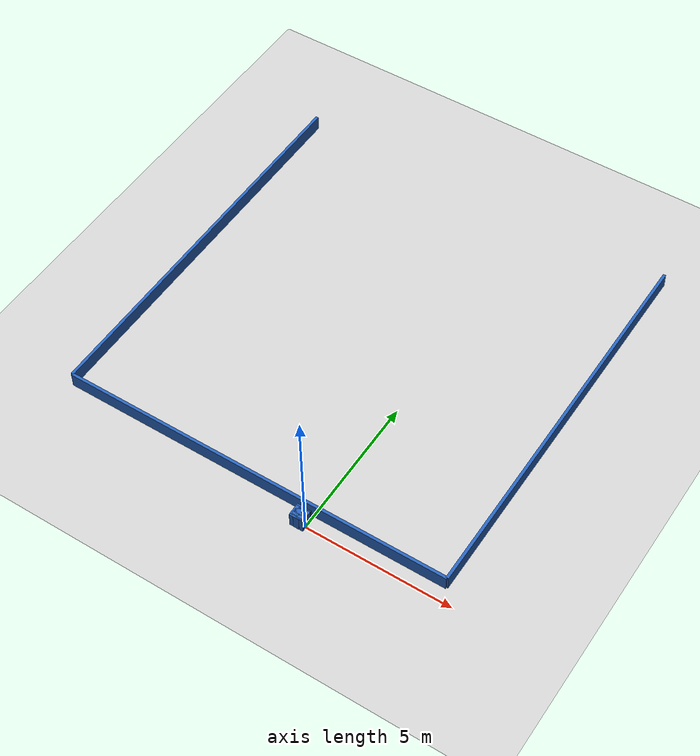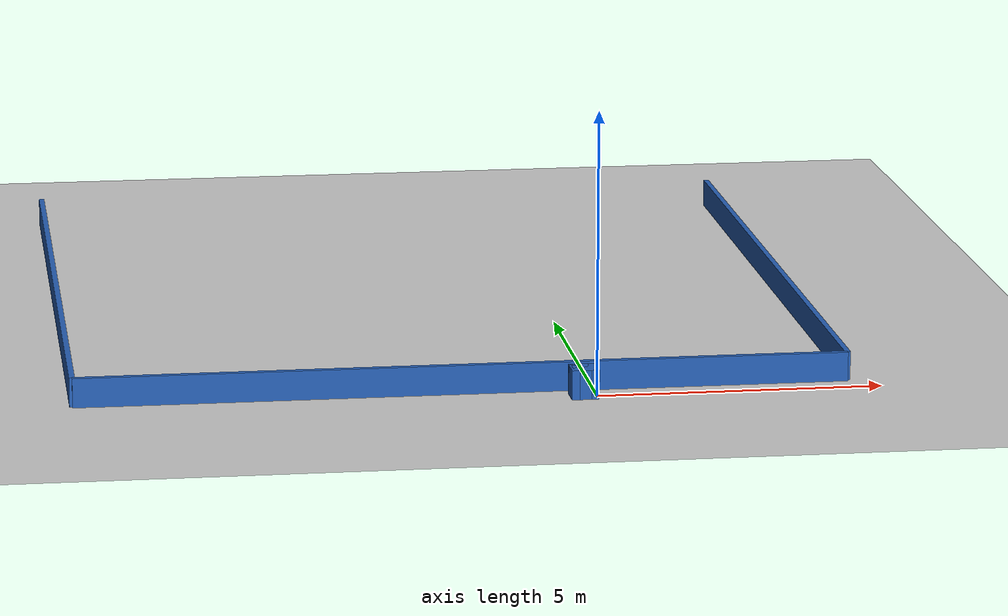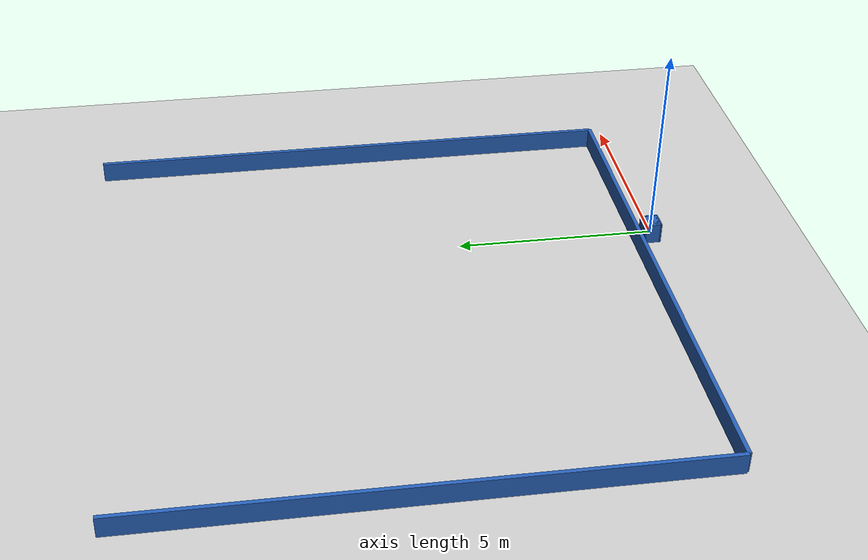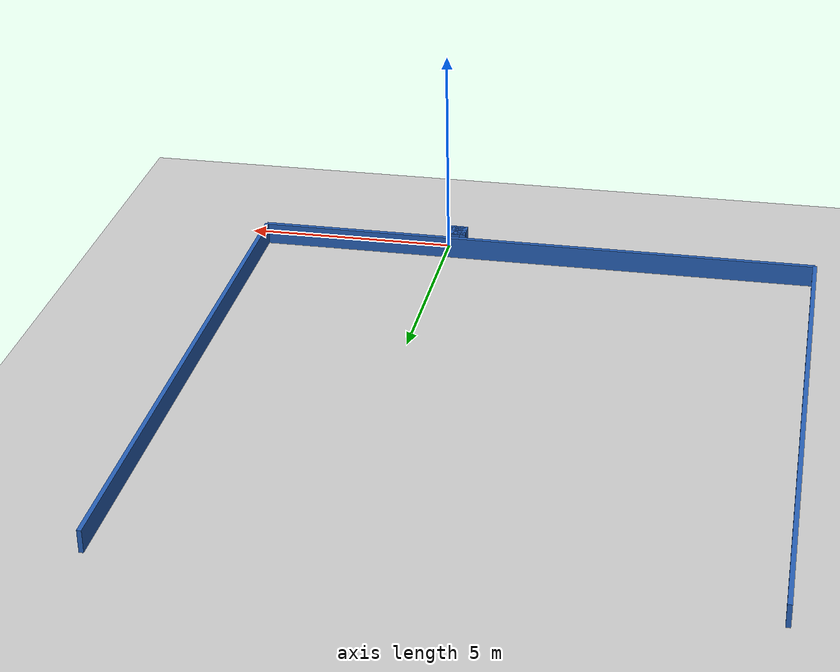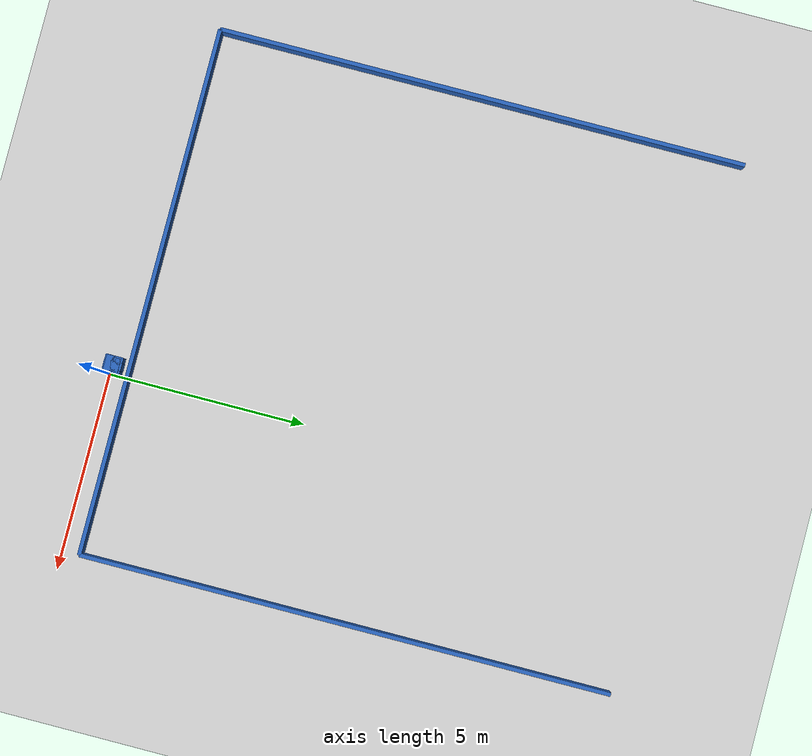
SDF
<?xml version="1.0" ?>
    <sdf version="1.5">
      <world name="default">
        <!-- A global light source -->
        <include>
          <uri>model://sun</uri>
        </include>
        <!-- A ground plane -->
        <include>
          <uri>model://ground_plane</uri>
        </include>

    <model name='libopen_space_final_T2B_106_71'>
      <static>1</static>
      <pose frame=''>-0.225000 0.075000 0.000000 0.000000 0.000000 0.000000</pose>
      <link name='link'>
        <inertial>
          <mass>1</mass>
          <inertia>
            <ixx>0.145833</ixx>
            <ixy>0</ixy>
            <ixz>0</ixz>
            <iyy>0.145833</iyy>
            <iyz>0</iyz>
            <izz>0.125</izz>
          </inertia>
        </inertial>
        <collision name='collision'>
          <geometry>
            <box>
              <size>0.47 0.45 1</size>
            </box>
          </geometry>
          <max_contacts>10</max_contacts>
          <surface>
            <contact>
              <ode/>
            </contact>
            <bounce/>
            <friction>
              <torsional>
                <ode/>
              </torsional>
              <ode/>
            </friction>
          </surface>
        </collision>
        <visual name='visual'>
          <geometry>
            <box>
              <size>0.47 0.45 1</size>
            </box>
          </geometry>
	    <material>
              <ambient>0.152000 0.379000 0.720000 1</ambient>
	      <diffuse>0.152000 0.379000 0.720000 1</diffuse>
          </material>
          <material>
            <script>
              <name>Gazebo/Grey</name>
              <uri>file://media/materials/scripts/gazebo.material</uri>
            </script>
          </material>
        </visual>
        <self_collide>0</self_collide>
        <kinematic>0</kinematic>
        <gravity>1</gravity>
      </link>
      <plugin name='libopen_space_final_T2B_106_71' filename='libopen_space_final_T2B_106_71.so'/>
    </model>

    <model name='libopen_space_final_T2B_94_31'>
      <static>1</static>
      <pose frame=''>-0.225000 0.075000 0.000000 0.000000 0.000000 0.000000</pose>
      <link name='link'>
        <inertial>
          <mass>1</mass>
          <inertia>
            <ixx>0.145833</ixx>
            <ixy>0</ixy>
            <ixz>0</ixz>
            <iyy>0.145833</iyy>
            <iyz>0</iyz>
            <izz>0.125</izz>
          </inertia>
        </inertial>
        <collision name='collision'>
          <geometry>
            <box>
              <size>0.43 0.33 1</size>
            </box>
          </geometry>
          <max_contacts>10</max_contacts>
          <surface>
            <contact>
              <ode/>
            </contact>
            <bounce/>
            <friction>
              <torsional>
                <ode/>
              </torsional>
              <ode/>
            </friction>
          </surface>
        </collision>
        <visual name='visual'>
          <geometry>
            <box>
              <size>0.43 0.33 1</size>
            </box>
          </geometry>
	    <material>
              <ambient>0.152000 0.379000 0.720000 1</ambient>
	      <diffuse>0.152000 0.379000 0.720000 1</diffuse>
          </material>
          <material>
            <script>
              <name>Gazebo/Grey</name>
              <uri>file://media/materials/scripts/gazebo.material</uri>
            </script>
          </material>
        </visual>
        <self_collide>0</self_collide>
        <kinematic>0</kinematic>
        <gravity>1</gravity>
      </link>
      <plugin name='libopen_space_final_T2B_94_31' filename='libopen_space_final_T2B_94_31.so'/>
    </model>

    <model name='libopen_space_final_T2B_105_38'>
      <static>1</static>
      <pose frame=''>-0.225000 0.075000 0.000000 0.000000 0.000000 0.000000</pose>
      <link name='link'>
        <inertial>
          <mass>1</mass>
          <inertia>
            <ixx>0.145833</ixx>
            <ixy>0</ixy>
            <ixz>0</ixz>
            <iyy>0.145833</iyy>
            <iyz>0</iyz>
            <izz>0.125</izz>
          </inertia>
        </inertial>
        <collision name='collision'>
          <geometry>
            <box>
              <size>0.47 0.40 1</size>
            </box>
          </geometry>
          <max_contacts>10</max_contacts>
          <surface>
            <contact>
              <ode/>
            </contact>
            <bounce/>
            <friction>
              <torsional>
                <ode/>
              </torsional>
              <ode/>
            </friction>
          </surface>
        </collision>
        <visual name='visual'>
          <geometry>
            <box>
              <size>0.47 0.40 1</size>
            </box>
          </geometry>
	    <material>
              <ambient>0.152000 0.379000 0.720000 1</ambient>
	      <diffuse>0.152000 0.379000 0.720000 1</diffuse>
          </material>
          <material>
            <script>
              <name>Gazebo/Grey</name>
              <uri>file://media/materials/scripts/gazebo.material</uri>
            </script>
          </material>
        </visual>
        <self_collide>0</self_collide>
        <kinematic>0</kinematic>
        <gravity>1</gravity>
      </link>
      <plugin name='libopen_space_final_T2B_105_38' filename='libopen_space_final_T2B_105_38.so'/>
    </model>

    <model name='libopen_space_final_T2B_51_63'>
      <static>1</static>
      <pose frame=''>-0.225000 0.075000 0.000000 0.000000 0.000000 0.000000</pose>
      <link name='link'>
        <inertial>
          <mass>1</mass>
          <inertia>
            <ixx>0.145833</ixx>
            <ixy>0</ixy>
            <ixz>0</ixz>
            <iyy>0.145833</iyy>
            <iyz>0</iyz>
            <izz>0.125</izz>
          </inertia>
        </inertial>
        <collision name='collision'>
          <geometry>
            <box>
              <size>0.26 0.32 1</size>
            </box>
          </geometry>
          <max_contacts>10</max_contacts>
          <surface>
            <contact>
              <ode/>
            </contact>
            <bounce/>
            <friction>
              <torsional>
                <ode/>
              </torsional>
              <ode/>
            </friction>
          </surface>
        </collision>
        <visual name='visual'>
          <geometry>
            <box>
              <size>0.26 0.32 1</size>
            </box>
          </geometry>
	    <material>
              <ambient>0.152000 0.379000 0.720000 1</ambient>
	      <diffuse>0.152000 0.379000 0.720000 1</diffuse>
          </material>
          <material>
            <script>
              <name>Gazebo/Grey</name>
              <uri>file://media/materials/scripts/gazebo.material</uri>
            </script>
          </material>
        </visual>
        <self_collide>0</self_collide>
        <kinematic>0</kinematic>
        <gravity>1</gravity>
      </link>
      <plugin name='libopen_space_final_T2B_51_63' filename='libopen_space_final_T2B_51_63.so'/>
    </model>

    <model name='libopen_space_final_T2B_113_82'>
      <static>1</static>
      <pose frame=''>-0.225000 0.075000 0.000000 0.000000 0.000000 0.000000</pose>
      <link name='link'>
        <inertial>
          <mass>1</mass>
          <inertia>
            <ixx>0.145833</ixx>
            <ixy>0</ixy>
            <ixz>0</ixz>
            <iyy>0.145833</iyy>
            <iyz>0</iyz>
            <izz>0.125</izz>
          </inertia>
        </inertial>
        <collision name='collision'>
          <geometry>
            <box>
              <size>0.20 0.46 1</size>
            </box>
          </geometry>
          <max_contacts>10</max_contacts>
          <surface>
            <contact>
              <ode/>
            </contact>
            <bounce/>
            <friction>
              <torsional>
                <ode/>
              </torsional>
              <ode/>
            </friction>
          </surface>
        </collision>
        <visual name='visual'>
          <geometry>
            <box>
              <size>0.20 0.46 1</size>
            </box>
          </geometry>
	    <material>
              <ambient>0.152000 0.379000 0.720000 1</ambient>
	      <diffuse>0.152000 0.379000 0.720000 1</diffuse>
          </material>
          <material>
            <script>
              <name>Gazebo/Grey</name>
              <uri>file://media/materials/scripts/gazebo.material</uri>
            </script>
          </material>
        </visual>
        <self_collide>0</self_collide>
        <kinematic>0</kinematic>
        <gravity>1</gravity>
      </link>
      <plugin name='libopen_space_final_T2B_113_82' filename='libopen_space_final_T2B_113_82.so'/>
    </model>

    <model name='libopen_space_final_T2B_105_94'>
      <static>1</static>
      <pose frame=''>-0.225000 0.075000 0.000000 0.000000 0.000000 0.000000</pose>
      <link name='link'>
        <inertial>
          <mass>1</mass>
          <inertia>
            <ixx>0.145833</ixx>
            <ixy>0</ixy>
            <ixz>0</ixz>
            <iyy>0.145833</iyy>
            <iyz>0</iyz>
            <izz>0.125</izz>
          </inertia>
        </inertial>
        <collision name='collision'>
          <geometry>
            <box>
              <size>0.39 0.30 1</size>
            </box>
          </geometry>
          <max_contacts>10</max_contacts>
          <surface>
            <contact>
              <ode/>
            </contact>
            <bounce/>
            <friction>
              <torsional>
                <ode/>
              </torsional>
              <ode/>
            </friction>
          </surface>
        </collision>
        <visual name='visual'>
          <geometry>
            <box>
              <size>0.39 0.30 1</size>
            </box>
          </geometry>
	    <material>
              <ambient>0.152000 0.379000 0.720000 1</ambient>
	      <diffuse>0.152000 0.379000 0.720000 1</diffuse>
          </material>
          <material>
            <script>
              <name>Gazebo/Grey</name>
              <uri>file://media/materials/scripts/gazebo.material</uri>
            </script>
          </material>
        </visual>
        <self_collide>0</self_collide>
        <kinematic>0</kinematic>
        <gravity>1</gravity>
      </link>
      <plugin name='libopen_space_final_T2B_105_94' filename='libopen_space_final_T2B_105_94.so'/>
    </model>

    <model name='libopen_space_final_T2B_129_21'>
      <static>1</static>
      <pose frame=''>-0.225000 0.075000 0.000000 0.000000 0.000000 0.000000</pose>
      <link name='link'>
        <inertial>
          <mass>1</mass>
          <inertia>
            <ixx>0.145833</ixx>
            <ixy>0</ixy>
            <ixz>0</ixz>
            <iyy>0.145833</iyy>
            <iyz>0</iyz>
            <izz>0.125</izz>
          </inertia>
        </inertial>
        <collision name='collision'>
          <geometry>
            <box>
              <size>0.15 0.32 1</size>
            </box>
          </geometry>
          <max_contacts>10</max_contacts>
          <surface>
            <contact>
              <ode/>
            </contact>
            <bounce/>
            <friction>
              <torsional>
                <ode/>
              </torsional>
              <ode/>
            </friction>
          </surface>
        </collision>
        <visual name='visual'>
          <geometry>
            <box>
              <size>0.15 0.32 1</size>
            </box>
          </geometry>
	    <material>
              <ambient>0.152000 0.379000 0.720000 1</ambient>
	      <diffuse>0.152000 0.379000 0.720000 1</diffuse>
          </material>
          <material>
            <script>
              <name>Gazebo/Grey</name>
              <uri>file://media/materials/scripts/gazebo.material</uri>
            </script>
          </material>
        </visual>
        <self_collide>0</self_collide>
        <kinematic>0</kinematic>
        <gravity>1</gravity>
      </link>
      <plugin name='libopen_space_final_T2B_129_21' filename='libopen_space_final_T2B_129_21.so'/>
    </model>

    <model name='libopen_space_final_T2B_91_29'>
      <static>1</static>
      <pose frame=''>-0.225000 0.075000 0.000000 0.000000 0.000000 0.000000</pose>
      <link name='link'>
        <inertial>
          <mass>1</mass>
          <inertia>
            <ixx>0.145833</ixx>
            <ixy>0</ixy>
            <ixz>0</ixz>
            <iyy>0.145833</iyy>
            <iyz>0</iyz>
            <izz>0.125</izz>
          </inertia>
        </inertial>
        <collision name='collision'>
          <geometry>
            <box>
              <size>0.48 0.35 1</size>
            </box>
          </geometry>
          <max_contacts>10</max_contacts>
          <surface>
            <contact>
              <ode/>
            </contact>
            <bounce/>
            <friction>
              <torsional>
                <ode/>
              </torsional>
              <ode/>
            </friction>
          </surface>
        </collision>
        <visual name='visual'>
          <geometry>
            <box>
              <size>0.48 0.35 1</size>
            </box>
          </geometry>
	    <material>
              <ambient>0.152000 0.379000 0.720000 1</ambient>
	      <diffuse>0.152000 0.379000 0.720000 1</diffuse>
          </material>
          <material>
            <script>
              <name>Gazebo/Grey</name>
              <uri>file://media/materials/scripts/gazebo.material</uri>
            </script>
          </material>
        </visual>
        <self_collide>0</self_collide>
        <kinematic>0</kinematic>
        <gravity>1</gravity>
      </link>
      <plugin name='libopen_space_final_T2B_91_29' filename='libopen_space_final_T2B_91_29.so'/>
    </model>

    <model name='libopen_space_final_T2B_141_33'>
      <static>1</static>
      <pose frame=''>-0.225000 0.075000 0.000000 0.000000 0.000000 0.000000</pose>
      <link name='link'>
        <inertial>
          <mass>1</mass>
          <inertia>
            <ixx>0.145833</ixx>
            <ixy>0</ixy>
            <ixz>0</ixz>
            <iyy>0.145833</iyy>
            <iyz>0</iyz>
            <izz>0.125</izz>
          </inertia>
        </inertial>
        <collision name='collision'>
          <geometry>
            <box>
              <size>0.38 0.22 1</size>
            </box>
          </geometry>
          <max_contacts>10</max_contacts>
          <surface>
            <contact>
              <ode/>
            </contact>
            <bounce/>
            <friction>
              <torsional>
                <ode/>
              </torsional>
              <ode/>
            </friction>
          </surface>
        </collision>
        <visual name='visual'>
          <geometry>
            <box>
              <size>0.38 0.22 1</size>
            </box>
          </geometry>
	    <material>
              <ambient>0.152000 0.379000 0.720000 1</ambient>
	      <diffuse>0.152000 0.379000 0.720000 1</diffuse>
          </material>
          <material>
            <script>
              <name>Gazebo/Grey</name>
              <uri>file://media/materials/scripts/gazebo.material</uri>
            </script>
          </material>
        </visual>
        <self_collide>0</self_collide>
        <kinematic>0</kinematic>
        <gravity>1</gravity>
      </link>
      <plugin name='libopen_space_final_T2B_141_33' filename='libopen_space_final_T2B_141_33.so'/>
    </model>

    <model name='libopen_space_final_T2B_73_9'>
      <static>1</static>
      <pose frame=''>-0.225000 0.075000 0.000000 0.000000 0.000000 0.000000</pose>
      <link name='link'>
        <inertial>
          <mass>1</mass>
          <inertia>
            <ixx>0.145833</ixx>
            <ixy>0</ixy>
            <ixz>0</ixz>
            <iyy>0.145833</iyy>
            <iyz>0</iyz>
            <izz>0.125</izz>
          </inertia>
        </inertial>
        <collision name='collision'>
          <geometry>
            <box>
              <size>0.41 0.40 1</size>
            </box>
          </geometry>
          <max_contacts>10</max_contacts>
          <surface>
            <contact>
              <ode/>
            </contact>
            <bounce/>
            <friction>
              <torsional>
                <ode/>
              </torsional>
              <ode/>
            </friction>
          </surface>
        </collision>
        <visual name='visual'>
          <geometry>
            <box>
              <size>0.41 0.40 1</size>
            </box>
          </geometry>
	    <material>
              <ambient>0.152000 0.379000 0.720000 1</ambient>
	      <diffuse>0.152000 0.379000 0.720000 1</diffuse>
          </material>
          <material>
            <script>
              <name>Gazebo/Grey</name>
              <uri>file://media/materials/scripts/gazebo.material</uri>
            </script>
          </material>
        </visual>
        <self_collide>0</self_collide>
        <kinematic>0</kinematic>
        <gravity>1</gravity>
      </link>
      <plugin name='libopen_space_final_T2B_73_9' filename='libopen_space_final_T2B_73_9.so'/>
    </model>

        <model name='bottom_wall'>
          <static>1</static>
          <pose frame=''>-2.25 0.5 0.000000 0.000000 0.000000 1.57079632</pose>
          <link name='link'>
            <inertial>
            <mass>1</mass>
            <inertia>
              <ixx>0.145833</ixx>
              <ixy>0</ixy>
              <ixz>0</ixz>
              <iyy>0.145833</iyy>
              <iyz>0</iyz>
              <izz>0.125</izz>
            </inertia>
            </inertial>
            <collision name='collision'>
            <geometry>
              <box>
              <size>0.1 13.5 1</size>
              </box>
            </geometry>
            <max_contacts>10</max_contacts>
            <surface>
              <contact>
              <ode/>
              </contact>
              <bounce/>
              <friction>
              <torsional>
                <ode/>
              </torsional>
              <ode/>
              </friction>
            </surface>
            </collision>
            <visual name='visual'>
            <geometry>
              <box>
              <size>0.1 13.5 1</size>
              </box>
            </geometry>
            <material>
              <ambient>0.152000 0.379000 0.720000 1</ambient>
            <diffuse>0.152000 0.379000 0.720000 1</diffuse>
            </material>
            <material>
              <script>
              <name>Gazebo/Grey</name>
              <uri>file://media/materials/scripts/gazebo.material</uri>
              </script>
            </material>
            </visual>
            <self_collide>0</self_collide>
            <kinematic>0</kinematic>
            <gravity>1</gravity>
          </link>
        </model>

        <model name='left_wall'>
          <static>1</static>
          <pose frame=''>-9 7.25 0.000000 0.000000 0.000000 0.000000</pose>
          <link name='link'>
            <inertial>
            <mass>1</mass>
            <inertia>
              <ixx>0.145833</ixx>
              <ixy>0</ixy>
              <ixz>0</ixz>
              <iyy>0.145833</iyy>
              <iyz>0</iyz>
              <izz>0.125</izz>
            </inertia>
            </inertial>
            <collision name='collision'>
            <geometry>
              <box>
              <size>0.1 13.5 1</size>
              </box>
            </geometry>
            <max_contacts>10</max_contacts>
            <surface>
              <contact>
              <ode/>
              </contact>
              <bounce/>
              <friction>
              <torsional>
                <ode/>
              </torsional>
              <ode/>
              </friction>
            </surface>
            </collision>
            <visual name='visual'>
            <geometry>
              <box>
              <size>0.1 13.5 1</size>
              </box>
            </geometry>
            <material>
              <ambient>0.152000 0.379000 0.720000 1</ambient>
            <diffuse>0.152000 0.379000 0.720000 1</diffuse>
            </material>
            <material>
              <script>
              <name>Gazebo/Grey</name>
              <uri>file://media/materials/scripts/gazebo.material</uri>
              </script>
            </material>
            </visual>
            <self_collide>0</self_collide>
            <kinematic>0</kinematic>
            <gravity>1</gravity>
          </link>
        </model>

        <model name='right_wall'>
          <static>1</static>
          <pose frame=''>4.5 7.25 0.000000 0.000000 0.000000 0.000000</pose>
          <link name='link'>
            <inertial>
            <mass>1</mass>
            <inertia>
              <ixx>0.145833</ixx>
              <ixy>0</ixy>
              <ixz>0</ixz>
              <iyy>0.145833</iyy>
              <iyz>0</iyz>
              <izz>0.125</izz>
            </inertia>
            </inertial>
            <collision name='collision'>
            <geometry>
              <box>
              <size>0.1 13.5 1</size>
              </box>
            </geometry>
            <max_contacts>10</max_contacts>
            <surface>
              <contact>
              <ode/>
              </contact>
              <bounce/>
              <friction>
              <torsional>
                <ode/>
              </torsional>
              <ode/>
              </friction>
            </surface>
            </collision>
            <visual name='visual'>
            <geometry>
              <box>
              <size>0.1 13.5 1</size>
              </box>
            </geometry>
            <material>
              <ambient>0.152000 0.379000 0.720000 1</ambient>
            <diffuse>0.152000 0.379000 0.720000 1</diffuse>
            </material>
            <material>
              <script>
              <name>Gazebo/Grey</name>
              <uri>file://media/materials/scripts/gazebo.material</uri>
              </script>
            </material>
            </visual>
            <self_collide>0</self_collide>
            <kinematic>0</kinematic>
            <gravity>1</gravity>
          </link>
        </model>

      </world>
    </sdf>"
